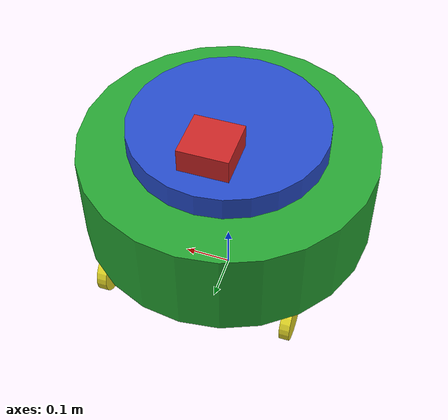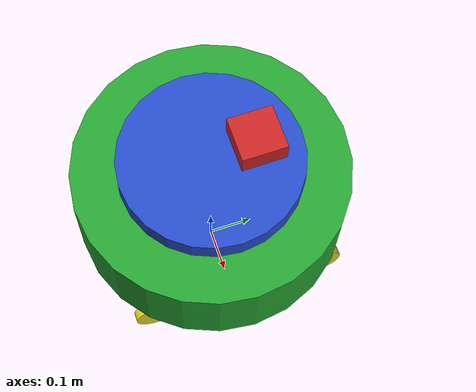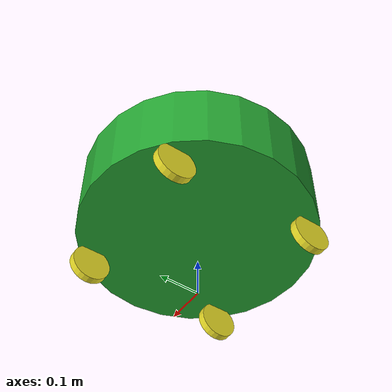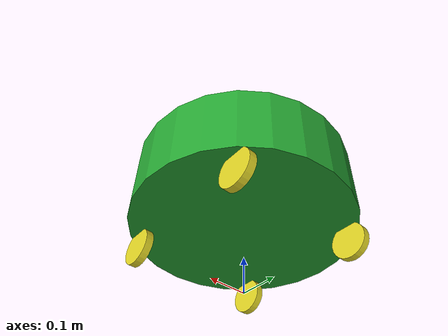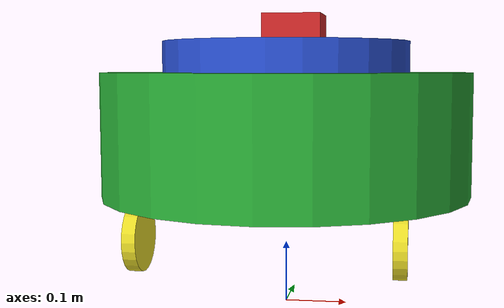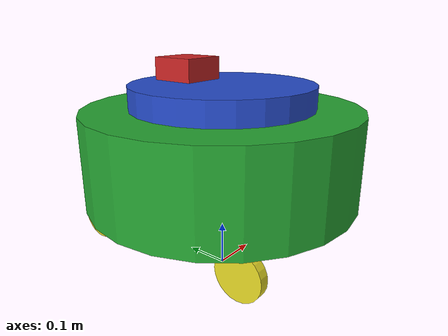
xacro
<?xml version="1.0"?>
<robot xmlns:xacro="http://www.ros.org/wiki/xacro" name="sentry">
<xacro:include filename="$(find sentry_laser_sim)/xacro_new/define_fun.xacro"/>
<xacro:include filename="$(find sentry_laser_sim)/xacro_new/chassis_link.xacro"/>
<xacro:include filename="$(find sentry_laser_sim)/xacro_new/driving_link.xacro"/>
<xacro:include filename="$(find sentry_laser_sim)/xacro_new/yaw_link.xacro"/>
<xacro:include filename="$(find sentry_laser_sim)/xacro_new/laser_link.xacro"/>

<!-- 四个舵，右前，左前，右后，左后依次标号为1，2，3，4 -->

<!-- joint -->
    <!-- base_footprint -->
    <xacro:myjoint_fixed joint_name="base_footprint_joint" joint_type="fixed" x="0" y="0" z="0.28" wx="0" wz="${PI / 4}" wy="0" parent_link="base_footprint" child_link="chassis_link"/>

    <!-- 左前舵 -->
    <!-- 左后舵 -->
    <!-- 右前舵 -->
    <!-- 右后舵 -->

    <!-- 左前舵 -->
    <!-- 左后舵 -->
    <!-- 右前舵 -->
    <!-- 右后舵 -->

    <!-- 左前驱动 -->
    <xacro:myjoint_continuous joint_name="driving_right_front_joint" joint_type="continuous" x="0" y="0.27" z="-0.14" wx="${PI / 2}" wy="0" wz="${PI / 4}" parent_link="chassis_link" child_link="driving_link3" ax="0" ay="0" az="1"/>
    <!-- 左后驱动 -->
    <xacro:myjoint_continuous joint_name="driving_left_front_joint" joint_type="continuous" x="-0.27" y="0" z="-0.14" wx="${PI / 2}" wy="0" wz="${PI / 4}" parent_link="chassis_link" child_link="driving_link1" ax="0" ay="0" az="1"/>
    <!-- 右前驱动 -->
    <xacro:myjoint_continuous joint_name="driving_right_back_joint" joint_type="continuous" x="0.27" y="0" z="-0.14" wx="${PI / 2}" wy="0" wz="${PI / 4}" parent_link="chassis_link" child_link="driving_link4" ax="0" ay="0" az="1"/>
    <!-- 右后驱动 -->
    <xacro:myjoint_continuous joint_name="driving_left_back_joint" joint_type="continuous" x="0" y="-0.27" z="-0.14" wx="${PI / 2}" wy="0" wz="${PI / 4}" parent_link="chassis_link" child_link="driving_link2" ax="0" ay="0" az="1"/>
    <!-- yaw -->
    <xacro:myjoint_continuous joint_name="yaw_joint" joint_type="continuous" x="0" y="0" z="0.1" wx="0" wy="0" wz="${-PI / 4}" parent_link="chassis_link" child_link="yaw_link" ax="0" ay="0" az="1"/>
    <!-- laser -->
    <xacro:myjoint_fixed joint_name="laser_joint" joint_type="fixed" x="0.0" y="0.1" z="0.05" wx="0" wz="0" wy="0" parent_link="yaw_link" child_link="laser_link"/>
    <xacro:myjoint_fixed joint_name="fake_laser_joint" joint_type="fixed" x="0" y="0" z="0.0" wx="0" wz="0" wy="0" parent_link="laser_link" child_link="laser_fake_link"/>

<!-- 驱动关节 -->
    <xacro:joint_trans joint_name="driving_left_front_joint"/>
    <xacro:joint_trans joint_name="driving_left_back_joint" />
    <xacro:joint_trans joint_name="driving_right_front_joint" />
    <xacro:joint_trans joint_name="driving_right_back_joint" />
    <xacro:joint_trans joint_name="yaw_joint" />

  <gazebo>
    <plugin name="gazebo_ros_control" filename="libgazebo_ros_control.so">
                <rosDebugLevel>Debug</rosDebugLevel>
                <publishWheelTF>true</publishWheelTF>
                <robotNamespace>/sentry</robotNamespace>
                <robotSimType>gazebo_ros_control/DefaultRobotHWSim</robotSimType>
                <publishTf>1</publishTf>
                <publishWheelJointState>true</publishWheelJointState>
                <alwaysOn>true</alwaysOn>
                <updateRate>100.0</updateRate>
                <legacyMode>true</legacyMode>

    </plugin>
  </gazebo>

  <gazebo>
	<plugin name="mecanum_controller" filename="libgazebo_ros_planar_move.so">
		        <commandTopic>cmd_vel</commandTopic>
            <odometryTopic>odom_sentry</odometryTopic>
           	<odometryFrame>odom_sentry</odometryFrame>
            <robotNamespace>/sentry</robotNamespace>
           	<leftFrontJoint>driving_left_front_joint</leftFrontJoint>
           	<rightFrontJoint>driving_right_front_joint</rightFrontJoint>
           	<leftRearJoint>driving_left_back_joint</leftRearJoint>
		        <rightRearJoint>driving_right_back_joint</rightRearJoint>
		        <odometryRate>30</odometryRate>
           	<robotBaseFrame>base_footprint</robotBaseFrame>
           	<broadcastTF>1</broadcastTF>
        </plugin>
    </gazebo>

</robot>

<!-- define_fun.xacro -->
<robot xmlns:xacro="http://www.ros.org/wiki/xacro" name="body_define">
<!-- 定义常量 -->
<xacro:property name="PI" value="3.1415926535"/>

<!-- 定义Link -->
    <!-- 定义矩形Link -->
    <xacro:macro name="mylink_tri" params="myname l w h x y z wx wy wz color r g b a mass ixx ixy ixz iyy iyz izz">
        <link name="${myname}">
        <visual>
            <geometry>
                <box size="${l} ${w} ${h}"/>
            </geometry>
            <origin xyz="${x} ${y} ${z}" rpy="${wx} ${wy} ${wz}"/>
            <meterial name="${color}">
                <color rgba="${r} ${g} ${b} ${a}"/>
            </meterial>
        </visual>
        <collision>
            <geometry>
                <box size="${l} ${w} ${h}"/>
            </geometry>
        </collision>
        <inertial>
            <mass value="${mass}"/>
            <inertia ixx="${ixx}" ixy="${ixy}" ixz="${ixz}" iyy="${iyy}" iyz="${iyz}" izz="${izz}"/>
        </inertial>
        </link>
    </xacro:macro>

    <!-- 定义圆柱link -->
    <xacro:macro name="mylink_cyl" params="link_name l r_ x y z wx wy wz color r g b a mass ixx ixy ixz iyy iyz izz">
        <link name="${link_name}">
            <visual>
                <geometry>
                    <cylinder length="${l}" radius="${r_}"/>
                </geometry>
                <origin xyz="${x} ${y} ${z}" rpy="${wx} ${wy} ${wz}"/>
                <meterial name="${color}">
                    <color rgba="${r} ${g} ${b} ${a}"/>
                </meterial>
            </visual>
            <collision>
                <geometry>
                    <cylinder length="${l}" radius="${r_}"/>
                </geometry>
            </collision>
            <inertial>
                <mass value="${mass}"/>
                <inertia ixx="${ixx}" ixy="${ixy}" ixz="${ixz}" iyy="${iyy}" iyz="${iyz}" izz="${izz}"/>
            </inertial>
        </link>
    </xacro:macro>

<!-- 定义关节 -->
    <!-- 定义fixed关节 -->
    <xacro:macro name="myjoint_fixed" params="joint_name joint_type x y z wx wz wy parent_link child_link">
        <joint name="${joint_name}" type="${joint_type}">
            <origin xyz="${x} ${y} ${z}" rpy="${wx} ${wy} ${wz}"/>
            <parent link="${parent_link}"/>
            <child link="${child_link}"/>
        </joint>
    </xacro:macro>
    <!-- 定义continuous关节 -->
    <xacro:macro name="myjoint_continuous" params="joint_name joint_type x y z wx wy wz parent_link child_link ax ay az">
	<joint name="${joint_name}" type="${joint_type}">
		<origin xyz="${x} ${y} ${z}" rpy="${wx} ${wy} ${wz}"/>
    		<parent link="${parent_link}" />
    		<child link="${child_link}" />
    		<axis xyz="${ax} ${ay} ${az}"/>
	</joint>
    </xacro:macro>

<!-- 传动实现:用于连接控制器与关节 -->
    <xacro:macro name="joint_trans" params="joint_name">
    <transmission name="trans_${joint_name}">
      <type>transmission_interface/SimpleTransmission</type>
      <actuator name="${joint_name}_actuator">
        <mechanicalReduction>1</mechanicalReduction>
      </actuator>
      <joint name="${joint_name}">
        <hardwareInterface>hardware_interface/EffortJointInterface</hardwareInterface>
      </joint>
    </transmission>
    </xacro:macro>

</robot>

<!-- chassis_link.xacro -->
<robot xmlns:xacro="http://www.ros.org/wiki/xacro" name="chassis_link">
<xacro:include filename="$(find sentry_laser_sim)/xacro_new/define_fun.xacro"/>
<xacro:property name="link_name" value="chassis_link"/>
<xacro:property name="chassis_height" value="0.2"/>
<xacro:property name="chassis_radius" value="0.3"/>

<!-- link在坐标系的位置 -->
<xacro:property name="pos_x" value="0"/>
<xacro:property name="pos_y" value="0"/>
<xacro:property name="pos_z" value="0"/>
<xacro:property name="ang_x" value="0"/>
<xacro:property name="ang_y" value="0"/>
<xacro:property name="ang_z" value="0"/>

<!-- link 颜色 -->
<xacro:property name="color" value="red"/>
<xacro:property name="color_r" value="255"/>
<xacro:property name="color_g" value="0"/>
<xacro:property name="color_b" value="0"/>
<xacro:property name="color_a" value="1"/>

<!-- link物理属性 -->
<xacro:property name="mass" value="5"/>
<xacro:property name="ixx" value="0.1"/>
<xacro:property name="ixy" value="0"/>
<xacro:property name="iyy" value="0.1"/>
<xacro:property name="iyz" value="0"/>
<xacro:property name="izz" value="0.1"/>
<xacro:property name="ixz" value="0"/>

<!--chassis_link-->
<!-- 作为哨兵底盘，尺寸尽量相似，圆柱半径为0.3m -->

<xacro:mylink_cyl link_name="${link_name}" l="${chassis_height}" r_="${chassis_radius}" x="${pos_x}" y="${pos_y}" z="${pos_z}" wx="${ang_x}" wy="${ang_y}" wz="${ang_z}" color="${color}" r="${color_r}" g="${color_g}" b="${color_b}" a="${color_a}" mass="${mass}" ixx="${ixx}" ixy="${ixy}" ixz="${ixz}" iyy="${iyy}" iyz="${iyz}" izz="${izz}"/>

<gazebo reference="chassis_link">
        <material>Gazebo/Green</material>
</gazebo>

<link name="base_footprint">
</link>

</robot>

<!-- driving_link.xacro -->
<robot xmlns:xacro="http://www.ros.org/wiki/xacro" name="driving_link">
<xacro:include filename="$(find sentry_laser_sim)/xacro_new/define_fun.xacro"/>

<!-- 四个舵，右前，左前，右后，左后依次标号为1，2，3，4 -->

<xacro:property name="link_name1" value="driving_link1"/>
<xacro:property name="link_name2" value="driving_link2"/>
<xacro:property name="link_name3" value="driving_link3"/>
<xacro:property name="link_name4" value="driving_link4"/>

<xacro:property name="link_hight" value="0.02"/>
<xacro:property name="link_radious" value="0.05"/>

<!-- link在坐标系的位置 -->
<xacro:property name="pos_x" value="0"/>
<xacro:property name="pos_y" value="0"/>
<xacro:property name="pos_z" value="0"/>
<xacro:property name="ang_x" value="0"/>
<xacro:property name="ang_y" value="0"/>
<xacro:property name="ang_z" value="0"/>

<!-- link 颜色 -->
<xacro:property name="color" value="red"/>
<xacro:property name="color_r" value="255"/>
<xacro:property name="color_g" value="0"/>
<xacro:property name="color_b" value="0"/>
<xacro:property name="color_a" value="1"/>

<!-- link物理属性 -->
<xacro:property name="mass" value="0.2729799494341"/>
<xacro:property name="ixx" value="0.000310662933362954"/>
<xacro:property name="ixy" value="4.06306257516411E-05"/>
<xacro:property name="iyy" value="1.84256237395161E-19"/>
<xacro:property name="iyz" value="5.90527327364396E-19"/>
<xacro:property name="izz" value="0.000304575420247696"/>
<xacro:property name="ixz" value="1.84256237395161E-19"/>

<!--heading_link-->
<!-- 作为哨兵舵 -->

<xacro:mylink_cyl link_name="${link_name1}" l="${link_hight}" r_="${link_radious}" x="${pos_x}" y="${pos_y}" z="${pos_z}" wx="${ang_x}" wy="${ang_y}" wz="${ang_z}" color="${color}" r="${color_r}" g="${color_g}" b="${color_b}" a="${color_a}" mass="${mass}" ixx="${ixx}" ixy="${ixy}" ixz="${ixz}" iyy="${iyy}" iyz="${iyz}" izz="${izz}"/>
<xacro:mylink_cyl link_name="${link_name2}" l="${link_hight}" r_="${link_radious}" x="${pos_x}" y="${pos_y}" z="${pos_z}" wx="${ang_x}" wy="${ang_y}" wz="${ang_z}" color="${color}" r="${color_r}" g="${color_g}" b="${color_b}" a="${color_a}" mass="${mass}" ixx="${ixx}" ixy="${ixy}" ixz="${ixz}" iyy="${iyy}" iyz="${iyz}" izz="${izz}"/>
<xacro:mylink_cyl link_name="${link_name3}" l="${link_hight}" r_="${link_radious}" x="${pos_x}" y="${pos_y}" z="${pos_z}" wx="${ang_x}" wy="${ang_y}" wz="${ang_z}" color="${color}" r="${color_r}" g="${color_g}" b="${color_b}" a="${color_a}" mass="${mass}" ixx="${ixx}" ixy="${ixy}" ixz="${ixz}" iyy="${iyy}" iyz="${iyz}" izz="${izz}"/>
<xacro:mylink_cyl link_name="${link_name4}" l="${link_hight}" r_="${link_radious}" x="${pos_x}" y="${pos_y}" z="${pos_z}" wx="${ang_x}" wy="${ang_y}" wz="${ang_z}" color="${color}" r="${color_r}" g="${color_g}" b="${color_b}" a="${color_a}" mass="${mass}" ixx="${ixx}" ixy="${ixy}" ixz="${ixz}" iyy="${iyy}" iyz="${iyz}" izz="${izz}"/>

<gazebo reference="${link_name1}">
        <material>Gazebo/Yellow</material>
</gazebo>

<gazebo reference="${link_name2}">
        <material>Gazebo/Yellow</material>
</gazebo>

<gazebo reference="${link_name3}">
        <material>Gazebo/Yellow</material>
</gazebo>

<gazebo reference="${link_name4}">
        <material>Gazebo/Yellow</material>
</gazebo>

</robot>

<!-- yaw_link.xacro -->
<robot xmlns:xacro="http://www.ros.org/wiki/xacro" name="yaw_link">
<xacro:include filename="$(find sentry_laser_sim)/xacro_new/define_fun.xacro"/>
<xacro:property name="link_name" value="yaw_link"/>
<xacro:property name="link_height" value="0.1"/>
<xacro:property name="link_radius" value="0.2"/>

<!-- link在坐标系的位置 -->
<xacro:property name="pos_x" value="0"/>
<xacro:property name="pos_y" value="0"/>
<xacro:property name="pos_z" value="0"/>
<xacro:property name="ang_x" value="0"/>
<xacro:property name="ang_y" value="0"/>
<xacro:property name="ang_z" value="0"/>

<!-- link 颜色 -->
<xacro:property name="color" value="red"/>
<xacro:property name="color_r" value="255"/>
<xacro:property name="color_g" value="0"/>
<xacro:property name="color_b" value="0"/>
<xacro:property name="color_a" value="1"/>

<!-- link物理属性 -->
<xacro:property name="mass" value="3"/>
<xacro:property name="ixx" value="0.01"/>
<xacro:property name="ixy" value="0"/>
<xacro:property name="iyy" value="0.01"/>
<xacro:property name="iyz" value="0"/>
<xacro:property name="izz" value="0.01"/>
<xacro:property name="ixz" value="0"/>

<!--yaw_link-->

<xacro:mylink_cyl link_name="${link_name}" l="${link_height}" r_="${link_radius}" x="${pos_x}" y="${pos_y}" z="${pos_z}" wx="${ang_x}" wy="${ang_y}" wz="${ang_z}" color="${color}" r="${color_r}" g="${color_g}" b="${color_b}" a="${color_a}" mass="${mass}" ixx="${ixx}" ixy="${ixy}" ixz="${ixz}" iyy="${iyy}" iyz="${iyz}" izz="${izz}"/>

<gazebo reference="yaw_link">
        <material>Gazebo/Blue</material>
</gazebo>

</robot>

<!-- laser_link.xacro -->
<robot xmlns:xacro="http://www.ros.org/wiki/xacro" name="laser_link">
<xacro:include filename="$(find sentry_laser_sim)/xacro_new/define_fun.xacro"/>
<xacro:property name="link_name" value="laser_link"/>
<xacro:property name="link_height" value="0.1"/>
<xacro:property name="link_length" value="0.1"/>
<xacro:property name="link_width" value="0.1"/>

<!-- link在坐标系的位置 -->
<xacro:property name="pos_x" value="0"/>
<xacro:property name="pos_y" value="0"/>
<xacro:property name="pos_z" value="0"/>
<xacro:property name="ang_x" value="0"/>
<xacro:property name="ang_y" value="0"/>
<xacro:property name="ang_z" value="0"/>

<!-- link 颜色 -->
<xacro:property name="color" value="red"/>
<xacro:property name="color_r" value="255"/>
<xacro:property name="color_g" value="0"/>
<xacro:property name="color_b" value="0"/>
<xacro:property name="color_a" value="1"/>

<!-- link物理属性 -->
<xacro:property name="mass" value="1"/>
<xacro:property name="ixx" value="0.001"/>
<xacro:property name="ixy" value="0"/>
<xacro:property name="iyy" value="0.001"/>
<xacro:property name="iyz" value="0"/>
<xacro:property name="izz" value="0.001"/>
<xacro:property name="ixz" value="0"/>

<!--yaw_link-->

<xacro:mylink_tri myname="${link_name}" l="${link_length}" w="${link_width}" h="${link_height}" x="${pos_x}" y="${pos_y}" z="${pos_z}" wx="${ang_x}" wy="${ang_y}" wz="${ang_z}" color="${color}" r="${color_r}" g="${color_g}" b="${color_b}" a="${color_a}" mass="${mass}" ixx="${ixx}" ixy="${ixy}" ixz="${ixz}" iyy="${iyy}" iyz="${iyz}" izz="${izz}"/>

<gazebo reference="laser_link">
        <material>Gazebo/Red</material>
</gazebo>

<!--laser_fake_link-->
<xacro:mylink_tri myname="laser_fake_link" l="0.001" w="0.001" h="0.001" x="0" y="0" z="0" wx="0" wy="0" wz="0" color="red" r="0" g="0" b="0" a="1" mass="0.001" ixx="0.0" ixy="0.0" ixz="0.0" iyy="0.0" iyz="0.0" izz="0.0"/>

<!--livox_laser_simulation-->
<xacro:property name="M_PI" value="3.14159"/>
  <xacro:property name="laser_min_range" value="0.4"/>
  <xacro:property name="laser_max_range" value="30.0"/>
  <xacro:property name="ros_topic" value="scan1"/>
  <xacro:property name="samples" value="24000"/>
  <xacro:property name="downsample" value="0"/>

  <xacro:macro name="null_inertial">
    <inertial>
      <mass value="0.1"/>
    <inertia ixx="0.01" ixy="0" ixz="0"
          iyy="0.01" iyz="0"
          izz="0.01"/>
    </inertial>

  </xacro:macro>

  <xacro:macro name="Livox_Mid_gazebo_sensor" params="visualize:=True update_rate:=10 resolution:=0.002 noise_mean:=0.0 noise_stddev:=0.00 name:=laser">
    <gazebo reference="${name}_fake_link">
      <sensor type="ray" name="${name}_livox">
        <pose>0 0 3 0 0 0</pose>
        <visualize>${visualize}</visualize>
        <update_rate>10</update_rate>
        <plugin name="gazebo_ros_laser_controller" filename="liblivox_laser_simulation.so">
			<ray>
			  <scan>
				<horizontal>
				<samples>100</samples>
				<resolution>1</resolution>
				<min_angle>${0}</min_angle>
				<max_angle>${2*M_PI}</max_angle>
				</horizontal>
				<vertical>
				<samples>12</samples>
				<resolution>1</resolution>
				<min_angle>${-7.22/180*M_PI}</min_angle>
				<max_angle>${55.22/180*M_PI}</max_angle>
				</vertical>
			  </scan>
			  <range>
				<min>${laser_min_range}</min>
				<max>${laser_max_range}</max>
				<resolution>${resolution}</resolution>
			  </range>
			  <noise>
				<type>gaussian</type>
				<mean>${noise_mean}</mean>
				<stddev>${noise_stddev}</stddev>
			  </noise>
			</ray>
          <visualize>${visualize}</visualize>
		  <samples>${samples}</samples>
		  <downsample>${downsample}</downsample>
		  <csv_file_name>package://sentry_laser_sim/scan_mode/mid360.csv</csv_file_name>
		  <ros_topic>${ros_topic}</ros_topic>
        </plugin>
      </sensor>
    </gazebo>
  </xacro:macro>
    <xacro:Livox_Mid_gazebo_sensor name="laser" visualize="true"/>

<!-- IMU插件 -->
<gazebo reference="laser_fake_link">
        <gravity>true</gravity>
        <sensor name="imu_sensor" type="imu">
            <always_on>true</always_on>
            <update_rate>100</update_rate>
            <visualize>true</visualize>
            <topic>__default_topic__</topic>
            <plugin filename="libgazebo_ros_imu_sensor.so" name="imu_plugin">
                <topicName>imu</topicName>
                <bodyName>imu</bodyName>
                <updateRateHZ>100.0</updateRateHZ>
                <gaussianNoise>0.0</gaussianNoise>
                <xyzOffset>0 0 0</xyzOffset>
                <rpyOffset>0 0 0</rpyOffset>
                <frameName>imu</frameName>
            </plugin>
            <pose>0 0 0 0 0 0</pose>
        </sensor>
    </gazebo>

</robot>
